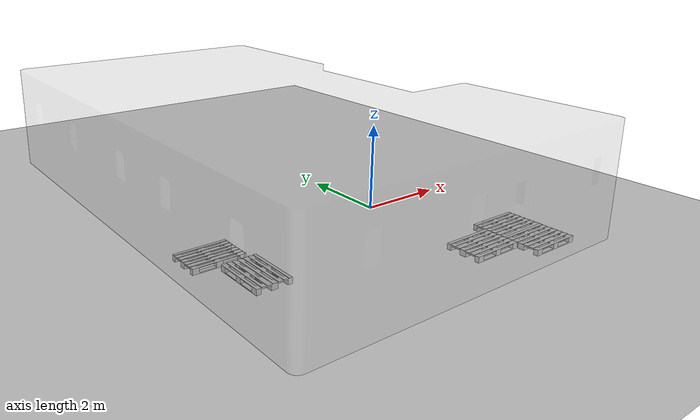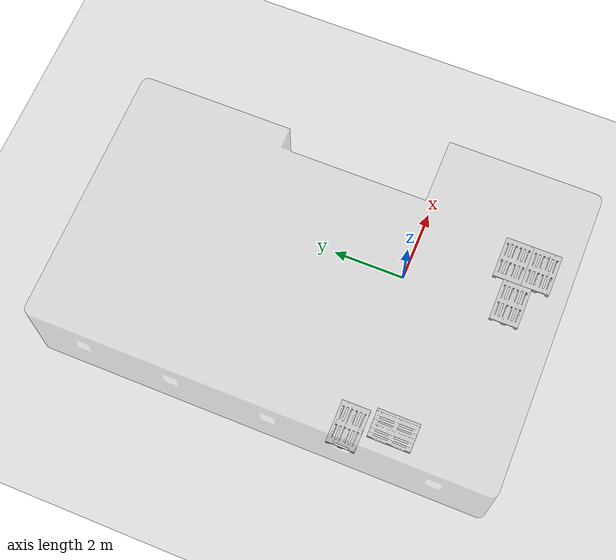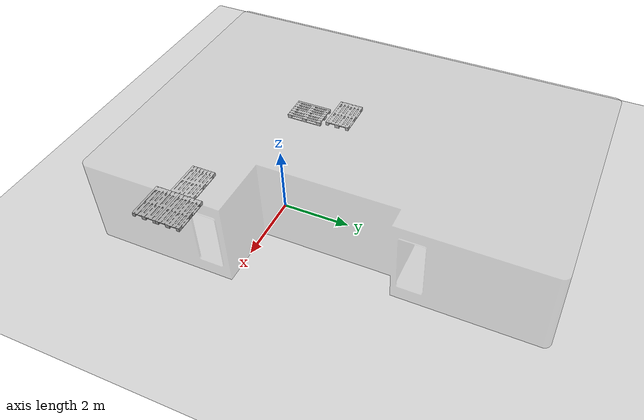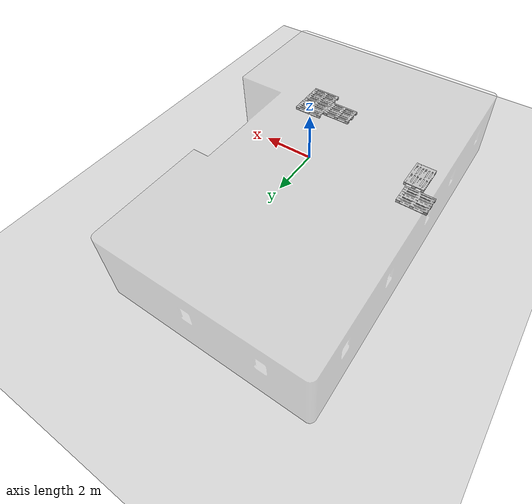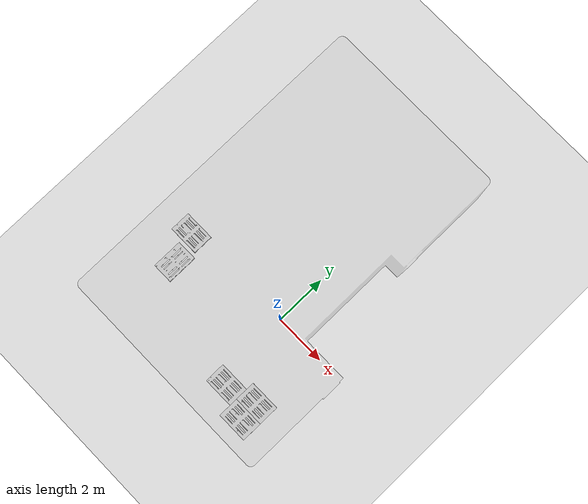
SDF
<sdf version="1.4">
 <world name="default">
  <physics type="ode">
   <gravity>0 0 -1</gravity>
   <ode>
    <solver><type>quick</type><iters>20</iters><sor>1</sor></solver>
    <constraints>
     <cfm>0</cfm>
     <erp>0.2</erp>
     <contact_max_correcting_vel>100</contact_max_correcting_vel>
     <contact_surface_layer>0</contact_surface_layer>
    </constraints>
   </ode>
   <max_step_size>0.003</max_step_size>
   <real_time_factor>1</real_time_factor>
   <real_time_update_rate>1000</real_time_update_rate>
  </physics>
  <scene>
   <grid>0</grid>
   <ambient>0.4 0.4 0.4 1</ambient>
   <background>0.7 0.7 0.7 1</background>
   <shadows>1</shadows>
  </scene>
  <light name="sun" type="directional">
   <pose>2 0 10 0 -0 0</pose>
   <diffuse>0.8 0.8 0.8 1</diffuse>
   <specular>0.2 0.2 0.2 1</specular>
   <attenuation>
    <range>1000</range>
    <constant>0.9</constant>
    <linear>0.01</linear>
    <quadratic>0.001</quadratic>
   </attenuation>
   <direction>-0.5 0.1 -0.9</direction>
  </light>
  <model name="ground_plane">
   <static>1</static>
   <link name="link">
    <collision name="collision">
     <geometry><plane><normal>0 0 1</normal><size>100 100</size></plane></geometry>
     <surface><friction><ode><mu>100</mu><mu2>50</mu2></ode></friction></surface>
    </collision>
    <visual name="visual">
     <cast_shadows>0</cast_shadows>
     <geometry><plane><normal>0 0 1</normal><size>100 100</size></plane></geometry>
     <material>
      <script><uri>file://media/materials/scripts/gazebo.material</uri><name>Gazebo/Grey</name></script>
     </material>
    </visual>
    <velocity_decay><linear>0</linear><angular>0</angular></velocity_decay>
   </link>
  </model>
  <model name="ship_interior">
   <static>1</static>
   <link name="body">
    <visual name="visual">
     <transparency>0.75</transparency>
     <geometry><mesh><uri>model://ship_interior/meshes/ship_interior.stl</uri></mesh></geometry>
    </visual>
    <collision name="collision">
     <geometry><mesh><uri>model://ship_interior/meshes/ship_interior.stl</uri></mesh></geometry>
    </collision>
    <velocity_decay><linear>0</linear><angular>0</angular></velocity_decay>
   </link>
  </model>
  <scene><ambient>0.4 0.4 0.4 1</ambient><background>0.7 0.7 0.7 1</background><shadows>1</shadows></scene>
  <model name="eur_pallet">
   <static>1</static>
   <link name="link">
    <inertial><mass>22</mass></inertial>
    <collision name="collision">
     <geometry><mesh><uri>model://eur_pallet/meshes/eur_pallet.stl</uri></mesh></geometry>
     <surface>
      <friction><ode><mu>5</mu><mu2>5</mu2></ode></friction>
      <contact>
       <ode>
        <soft_cfm>0.001</soft_cfm>
        <soft_erp>0.2</soft_erp>
        <kp>10000</kp>
        <kd>1000</kd>
        <max_vel>0.01</max_vel>
        <min_depth>0.001</min_depth>
       </ode>
      </contact>
     </surface>
    </collision>
    <visual name="visual">
     <geometry><mesh><uri>model://eur_pallet/meshes/eur_pallet.stl</uri></mesh></geometry>
    </visual>
    <velocity_decay><linear>0</linear><angular>0</angular></velocity_decay>
   </link>
   <pose>-4.09002 -1.27632 0 0 -0 0</pose>
  </model>
  <model name="eur_pallet_0">
   <static>1</static>
   <link name="link">
    <inertial><mass>22</mass></inertial>
    <collision name="collision">
     <geometry><mesh><uri>model://eur_pallet/meshes/eur_pallet.stl</uri></mesh></geometry>
     <surface>
      <friction><ode><mu>5</mu><mu2>5</mu2></ode></friction>
      <contact>
       <ode>
        <soft_cfm>0.001</soft_cfm>
        <soft_erp>0.2</soft_erp>
        <kp>10000</kp>
        <kd>1000</kd>
        <max_vel>0.01</max_vel>
        <min_depth>0.001</min_depth>
       </ode>
      </contact>
     </surface>
    </collision>
    <visual name="visual">
     <geometry><mesh><uri>model://eur_pallet/meshes/eur_pallet.stl</uri></mesh></geometry>
    </visual>
    <velocity_decay><linear>0</linear><angular>0</angular></velocity_decay>
   </link>
   <pose>-4.42721 -0.137889 0 0 0 -1.5708</pose>
  </model>
  <model name="eur_pallet_1">
   <static>1</static>
   <link name="link">
    <inertial><mass>22</mass></inertial>
    <collision name="collision">
     <geometry><mesh><uri>model://eur_pallet/meshes/eur_pallet.stl</uri></mesh></geometry>
     <surface>
      <friction><ode><mu>5</mu><mu2>5</mu2></ode></friction>
      <contact>
       <ode>
        <soft_cfm>0.001</soft_cfm>
        <soft_erp>0.2</soft_erp>
        <kp>10000</kp>
        <kd>1000</kd>
        <max_vel>0.01</max_vel>
        <min_depth>0.001</min_depth>
       </ode>
      </contact>
     </surface>
    </collision>
    <visual name="visual">
     <geometry><mesh><uri>model://eur_pallet/meshes/eur_pallet.stl</uri></mesh></geometry>
    </visual>
    <velocity_decay><linear>0</linear><angular>0</angular></velocity_decay>
   </link>
   <pose>0.336443 -2.947096 0 0 -0 1.5708</pose>
  </model>
  <model name="eur_pallet_2">
   <static>1</static>
   <link name="link">
    <inertial><mass>22</mass></inertial>
    <collision name="collision">
     <geometry><mesh><uri>model://eur_pallet/meshes/eur_pallet.stl</uri></mesh></geometry>
    </collision>
    <visual name="visual">
     <geometry><mesh><uri>model://eur_pallet/meshes/eur_pallet.stl</uri></mesh></geometry>
    </visual>
    <velocity_decay><linear>0</linear><angular>0</angular></velocity_decay>
   </link>
   <pose>1.53526 -3.433548 0 0 -0 1.5708</pose>
  </model>
  <model name="eur_pallet_3">
   <static>1</static>
   <link name="link">
    <inertial><mass>22</mass></inertial>
    <collision name="collision">
     <geometry><mesh><uri>model://eur_pallet/meshes/eur_pallet.stl</uri></mesh></geometry>
    </collision>
    <visual name="visual">
     <geometry><mesh><uri>model://eur_pallet/meshes/eur_pallet.stl</uri></mesh></geometry>
    </visual>
    <velocity_decay><linear>0</linear><angular>0</angular></velocity_decay>
   </link>
   <pose>1.53526 -2.633548 0 0 -0 1.5708</pose>
  </model>
 </world>
</sdf>
